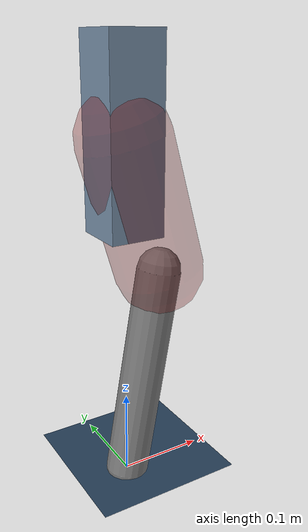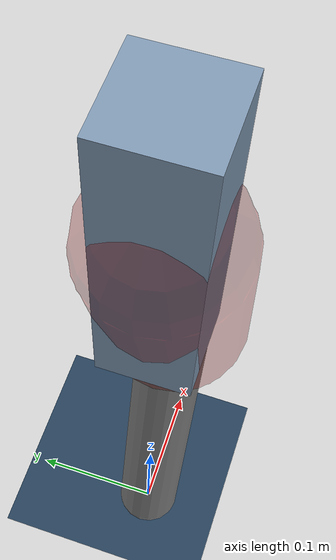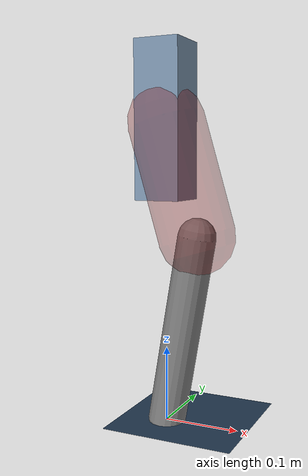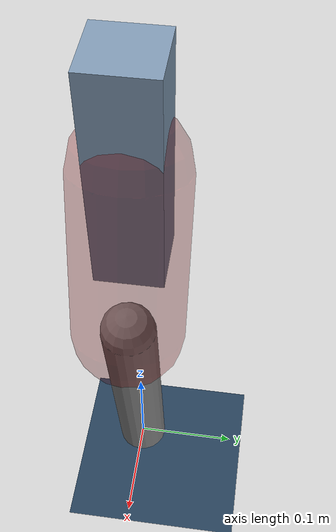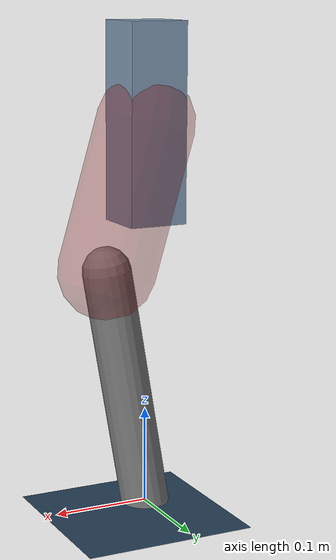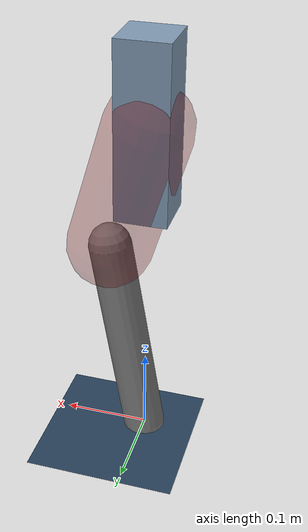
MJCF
<mujoco model="Hopper2D">
	<compiler inertiafromgeom="true" angle="radian" />
	<option timestep="0.001" integrator="implicit" cone="elliptic" solver="Newton" tolerance="1e-10" />

	<default>
		<geom contype="1" conaffinity="1" condim="3" friction="2 0.005 0.0001" solref="0.005 1" />
		<joint limited="true" damping="0.1" />
	</default>

	<asset>
		<texture name="skybox" type="skybox" builtin="gradient" rgb1=".4 .6 .8" rgb2="0 0 0" width="800" height="800" />
		<texture name="grid" type="2d" builtin="checker" rgb1=".1 .2 .3" rgb2=".2 .3 .4" width="300" height="300" mark="edge" markrgb=".2 .3 .4" />
		<material name="ground" texture="grid" texrepeat="1 1" texuniform="true" reflectance="0.1" />
		<material name="leg" rgba="0.5 0.6 0.7 1" />
	</asset>

	<worldbody>

		<geom name="floor" type="plane" size="5 5 0.25" material="ground" />

		<light directional="false" diffuse="0.8 0.8 0.8" specular="0.3 0.3 0.3" pos="0 0 2" dir="0 0 -1" />
		<light mode="targetbodycom" target="base" directional="false" diffuse="0.8 0.8 0.8" specular="0.3 0.3 0.3" pos="0 0 2" dir="0 0 -1" />

		<camera name="fixed" pos="0 -2 1" xyaxes="1 0 0 0 0 1" />
		<camera name="tracking" mode="trackcom" pos="0 -3 1" />

		<body name="root" pos="0 0 0.3968895169854273">
			<joint name="slide_x" type="slide" axis="1 0 0" range="-100 100" />
			<joint name="slide_z" type="slide" axis="0 0 1" range="0 10" />

			<body name="base" pos="0 0 0">
				<geom name="torso" type="box" size="0.03 0.03 0.1" mass="3.0140000000000002" material="leg" />

				<body name="link1" pos="0 0 0" euler="0 1.2837799531591167 0">
					<joint type="hinge" axis="0 -1 0" pos="0 0 0" name="hinge1" limited="true" range="-3.14 3.14" stiffness="0" damping="0.1" />
					<geom name="thigh" type="capsule" fromto="0 0 0 0.15318453655533376 0 0" size="0.05" rgba="0.5 0 0 0.3" mass="0.616042887732801" />

					<body name="link2" pos="0.15318453655533376 0 0" euler="0 0.45878790240657363 0">
						<joint type="hinge" axis="0 -1 0" pos="0 0 0" name="hinge2" limited="true" range="-3.14 3.14" stiffness="0" damping="0.1" />
						<geom name="shank" type="capsule" fromto="0 0 0 0.25370498043009354 0 0" size="0.025" mass="0.4455639843440748" />

					</body>
				</body>
			</body>
		</body>
	</worldbody>

	<actuator>
		<motor name="torque1" joint="hinge1" ctrlrange="-97.59175605763748 97.59175605763748" ctrllimited="true" gear="1" />
		<motor name="torque2" joint="hinge2" ctrlrange="-75.11252983056777 75.11252983056777" ctrllimited="true" gear="1" />
	</actuator>
</mujoco>
